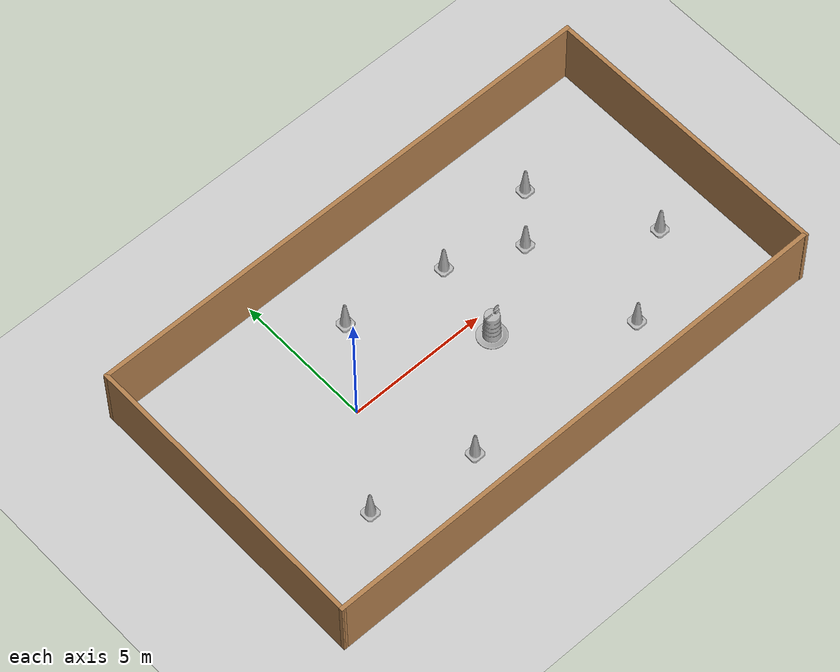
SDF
<sdf version="1.7">
 <world name="default">
  <light name="sun" type="directional">
   <pose>0 0 10 0 -0 0</pose>
   <diffuse>0.8 0.8 0.8 1</diffuse>
   <specular>0.2 0.2 0.2 1</specular>
   <attenuation>
    <range>1000</range>
    <constant>0.9</constant>
    <linear>0.01</linear>
    <quadratic>0.001</quadratic>
   </attenuation>
   <direction>-0.5 0.1 -0.9</direction>
   <spot><inner_angle>0</inner_angle><outer_angle>0</outer_angle><falloff>0</falloff></spot>
  </light>
  <model name="ground_plane">
   <static>1</static>
   <link name="link">
    <collision name="collision">
     <geometry><plane><normal>0 0 1</normal><size>100 100</size></plane></geometry>
     <surface>
      <contact><collide_bitmask>65535</collide_bitmask></contact>
      <friction><ode><mu>100</mu><mu2>50</mu2></ode></friction>
     </surface>
    </collision>
    <visual name="visual">
     <cast_shadows>0</cast_shadows>
     <geometry><plane><normal>0 0 1</normal><size>100 100</size></plane></geometry>
     <material>
      <script><uri>file://media/materials/scripts/gazebo.material</uri><name>Gazebo/Grey</name></script>
     </material>
    </visual>
   </link>
  </model>
  <gravity>0 0 -9.8</gravity>
  <magnetic_field>6e-06 2.3e-05 -4.2e-05</magnetic_field>
  <atmosphere type="adiabatic"/>
  <physics type="ode">
   <max_step_size>0.001</max_step_size>
   <real_time_factor>1</real_time_factor>
   <real_time_update_rate>1000</real_time_update_rate>
  </physics>
  <scene><ambient>0.4 0.4 0.4 1</ambient><background>0.7 0.7 0.7 1</background><shadows>1</shadows></scene>
  <audio><device>default</device></audio>
  <spherical_coordinates>
   <surface_model>EARTH_WGS84</surface_model>
   <latitude_deg>0</latitude_deg>
   <longitude_deg>0</longitude_deg>
   <elevation>0</elevation>
   <heading_deg>0</heading_deg>
  </spherical_coordinates>
  <model name="Construction Cone">
   <link name="link">
    <collision name="collision">
     <geometry>
      <mesh><scale>10 10 10</scale><uri>model://construction_cone/meshes/construction_cone.dae</uri></mesh>
     </geometry>
    </collision>
    <visual name="visual">
     <geometry>
      <mesh><scale>10 10 10</scale><uri>model://construction_cone/meshes/construction_cone.dae</uri></mesh>
     </geometry>
    </visual>
    <inertial>
     <inertia><ixx>1</ixx><ixy>0</ixy><ixz>0</ixz><iyy>1</iyy><iyz>0</iyz><izz>1</izz></inertia>
     <mass>1</mass>
    </inertial>
   </link>
   <pose>7.91117 0.941153 -0 0 -0 0</pose>
  </model>
  <model name="Construction Cone_0">
   <link name="link">
    <collision name="collision">
     <geometry>
      <mesh><scale>10 10 10</scale><uri>model://construction_cone/meshes/construction_cone.dae</uri></mesh>
     </geometry>
    </collision>
    <visual name="visual">
     <geometry>
      <mesh><scale>10 10 10</scale><uri>model://construction_cone/meshes/construction_cone.dae</uri></mesh>
     </geometry>
    </visual>
    <inertial>
     <inertia><ixx>1</ixx><ixy>0</ixy><ixz>0</ixz><iyy>1</iyy><iyz>0</iyz><izz>1</izz></inertia>
     <mass>1</mass>
    </inertial>
   </link>
   <pose>9.31199 2.44932 -2e-06 -3e-06 -1e-06 -0</pose>
  </model>
  <model name="Construction Barrel">
   <link name="link">
    <inertial>
     <pose>0 0 0.4 0 -0 0</pose>
     <mass>500</mass>
     <inertia><ixx>51.2096</ixx><iyy>51.2096</iyy><izz>25</izz><ixy>0</ixy><ixz>0</ixz><iyz>0</iyz></inertia>
    </inertial>
    <collision name="collision">
     <geometry><mesh><uri>model://construction_barrel/meshes/construction_barrel.dae</uri></mesh></geometry>
    </collision>
    <visual name="visual">
     <geometry><mesh><uri>model://construction_barrel/meshes/construction_barrel.dae</uri></mesh></geometry>
    </visual>
   </link>
   <pose>4.90242 -0.761017 -1e-06 1e-06 -9e-06 -2.9e-05</pose>
  </model>
  <model name="Construction Cone_1">
   <link name="link">
    <collision name="collision">
     <geometry>
      <mesh><scale>10 10 10</scale><uri>model://construction_cone/meshes/construction_cone.dae</uri></mesh>
     </geometry>
    </collision>
    <visual name="visual">
     <geometry>
      <mesh><scale>10 10 10</scale><uri>model://construction_cone/meshes/construction_cone.dae</uri></mesh>
     </geometry>
    </visual>
    <inertial>
     <inertia><ixx>1</ixx><ixy>0</ixy><ixz>0</ixz><iyy>1</iyy><iyz>0</iyz><izz>1</izz></inertia>
     <mass>1</mass>
    </inertial>
   </link>
   <pose>8.53321 -3.44807 -0 0 -1e-06 0</pose>
  </model>
  <model name="Construction Cone_2">
   <link name="link">
    <collision name="collision">
     <geometry>
      <mesh><scale>10 10 10</scale><uri>model://construction_cone/meshes/construction_cone.dae</uri></mesh>
     </geometry>
    </collision>
    <visual name="visual">
     <geometry>
      <mesh><scale>10 10 10</scale><uri>model://construction_cone/meshes/construction_cone.dae</uri></mesh>
     </geometry>
    </visual>
    <inertial>
     <inertia><ixx>1</ixx><ixy>0</ixy><ixz>0</ixz><iyy>1</iyy><iyz>0</iyz><izz>1</izz></inertia>
     <mass>1</mass>
    </inertial>
   </link>
   <pose>11.4257 -1.49724 -0 0 -1e-06 0</pose>
  </model>
  <model name="Construction Cone_3">
   <link name="link">
    <collision name="collision">
     <geometry>
      <mesh><scale>10 10 10</scale><uri>model://construction_cone/meshes/construction_cone.dae</uri></mesh>
     </geometry>
    </collision>
    <visual name="visual">
     <geometry>
      <mesh><scale>10 10 10</scale><uri>model://construction_cone/meshes/construction_cone.dae</uri></mesh>
     </geometry>
    </visual>
    <inertial>
     <inertia><ixx>1</ixx><ixy>0</ixy><ixz>0</ixz><iyy>1</iyy><iyz>0</iyz><izz>1</izz></inertia>
     <mass>1</mass>
    </inertial>
   </link>
   <pose>-2.03477 -2.88232 -0 0 -0 0</pose>
  </model>
  <model name="Construction Cone_4">
   <link name="link">
    <collision name="collision">
     <geometry>
      <mesh><scale>10 10 10</scale><uri>model://construction_cone/meshes/construction_cone.dae</uri></mesh>
     </geometry>
    </collision>
    <visual name="visual">
     <geometry>
      <mesh><scale>10 10 10</scale><uri>model://construction_cone/meshes/construction_cone.dae</uri></mesh>
     </geometry>
    </visual>
    <inertial>
     <inertia><ixx>1</ixx><ixy>0</ixy><ixz>0</ixz><iyy>1</iyy><iyz>0</iyz><izz>1</izz></inertia>
     <mass>1</mass>
    </inertial>
   </link>
   <pose>1.65769 -3.50787 -0 0 -0 0</pose>
  </model>
  <model name="Construction Cone_5">
   <link name="link">
    <collision name="collision">
     <geometry>
      <mesh><scale>10 10 10</scale><uri>model://construction_cone/meshes/construction_cone.dae</uri></mesh>
     </geometry>
    </collision>
    <visual name="visual">
     <geometry>
      <mesh><scale>10 10 10</scale><uri>model://construction_cone/meshes/construction_cone.dae</uri></mesh>
     </geometry>
    </visual>
    <inertial>
     <inertia><ixx>1</ixx><ixy>0</ixy><ixz>0</ixz><iyy>1</iyy><iyz>0</iyz><izz>1</izz></inertia>
     <mass>1</mass>
    </inertial>
   </link>
   <pose>5.44524 2.03104 -1e-06 4e-06 0 -0.000945</pose>
  </model>
  <model name="Construction Cone_6">
   <link name="link">
    <collision name="collision">
     <geometry>
      <mesh><scale>10 10 10</scale><uri>model://construction_cone/meshes/construction_cone.dae</uri></mesh>
     </geometry>
    </collision>
    <visual name="visual">
     <geometry>
      <mesh><scale>10 10 10</scale><uri>model://construction_cone/meshes/construction_cone.dae</uri></mesh>
     </geometry>
    </visual>
    <inertial>
     <inertia><ixx>1</ixx><ixy>0</ixy><ixz>0</ixz><iyy>1</iyy><iyz>0</iyz><izz>1</izz></inertia>
     <mass>1</mass>
    </inertial>
   </link>
   <pose>1.83481 2.59797 -0 0 -0 0</pose>
  </model>
  <model name="long_wall">
   <pose>3.90868 -0.396864 0 0 -0 0</pose>
   <link name="Wall_1">
    <collision name="Wall_1_Collision">
     <geometry><box><size>19.1157 0.15 2.5</size></box></geometry>
     <pose>0 0 1.25 0 -0 0</pose>
    </collision>
    <visual name="Wall_1_Visual">
     <pose>0 0 1.25 0 -0 0</pose>
     <geometry><box><size>19.1157 0.15 2.5</size></box></geometry>
     <material>
      <script><uri>file://media/materials/scripts/gazebo.material</uri><name>Gazebo/Wood</name></script>
      <ambient>1 1 1 1</ambient>
     </material>
     <meta><layer>0</layer></meta>
    </visual>
    <pose>0 -5.2913 0 0 -0 0.000442</pose>
   </link>
   <link name="Wall_2">
    <collision name="Wall_2_Collision">
     <geometry><box><size>10.75 0.15 2.5</size></box></geometry>
     <pose>0 0 1.25 0 -0 0</pose>
    </collision>
    <visual name="Wall_2_Visual">
     <pose>0 0 1.25 0 -0 0</pose>
     <geometry><box><size>10.75 0.15 2.5</size></box></geometry>
     <material>
      <script><uri>file://media/materials/scripts/gazebo.material</uri><name>Gazebo/Wood</name></script>
      <ambient>1 1 1 1</ambient>
     </material>
     <meta><layer>0</layer></meta>
    </visual>
    <pose>9.48279 -0.004503 0 0 -0 1.5708</pose>
   </link>
   <link name="Wall_3">
    <collision name="Wall_3_Collision">
     <geometry><box><size>19.1156 0.15 2.5</size></box></geometry>
     <pose>0 0 1.25 0 -0 0</pose>
    </collision>
    <visual name="Wall_3_Visual">
     <pose>0 0 1.25 0 -0 0</pose>
     <geometry><box><size>19.1156 0.15 2.5</size></box></geometry>
     <material>
      <script><uri>file://media/materials/scripts/gazebo.material</uri><name>Gazebo/Wood</name></script>
      <ambient>1 1 1 1</ambient>
     </material>
     <meta><layer>0</layer></meta>
    </visual>
    <pose>0 5.29751 0 0 -0 3.14138</pose>
   </link>
   <link name="Wall_4">
    <collision name="Wall_4_Collision">
     <geometry><box><size>10.75 0.15 2.5</size></box></geometry>
     <pose>0 0 1.25 0 -0 0</pose>
    </collision>
    <visual name="Wall_4_Visual">
     <pose>0 0 1.25 0 -0 0</pose>
     <geometry><box><size>10.75 0.15 2.5</size></box></geometry>
     <material>
      <script><uri>file://media/materials/scripts/gazebo.material</uri><name>Gazebo/Wood</name></script>
      <ambient>1 1 1 1</ambient>
     </material>
     <meta><layer>0</layer></meta>
    </visual>
    <pose>-9.48279 0.004503 0 0 -0 -1.5708</pose>
   </link>
   <static>1</static>
  </model>
 </world>
</sdf>
